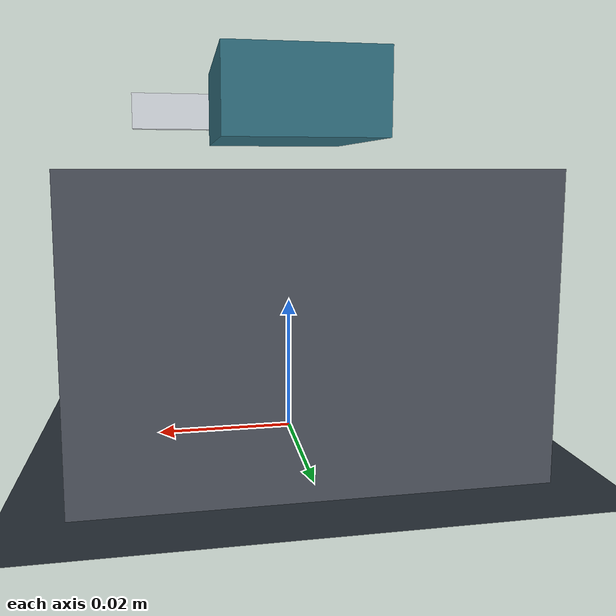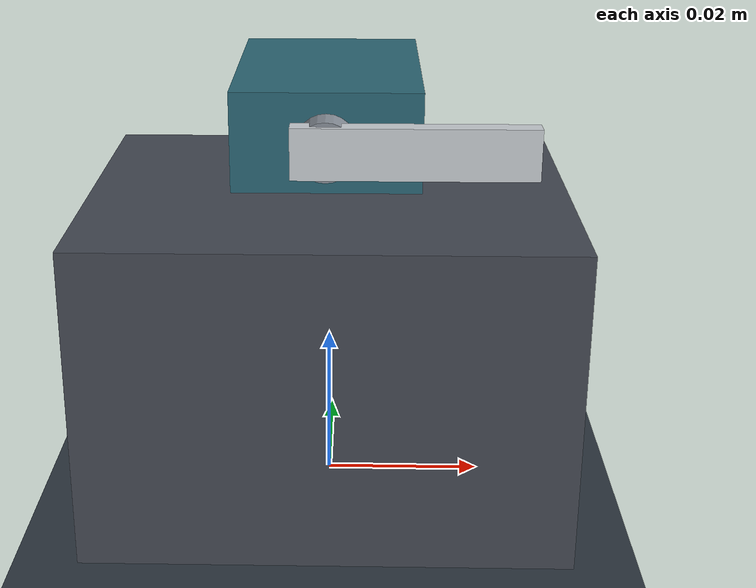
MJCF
<mujoco model="sg90_bench">
  <compiler angle="radian" coordinate="local" autolimits="true"/>
  <option timestep="0.001" gravity="0 0 -9.81" integrator="implicitfast" iterations="50"/>

  <include file="sg90.xml"/>

  <visual>
    <rgba haze="0.12 0.16 0.22 1"/>
    <quality shadowsize="2048"/>
  </visual>

  <asset>
    <texture name="grid" type="2d" builtin="checker" rgb1="0.22 0.26 0.30" rgb2="0.16 0.19 0.22"
             width="512" height="512"/>
    <material name="floor" texture="grid" texrepeat="8 8" reflectance="0.1"/>
    <material name="bench_mount" rgba="0.28 0.30 0.34 1" specular="0.2" shininess="0.25"/>
  </asset>

  <default>
    <geom friction="0.5 0.005 0.0001" condim="3"/>
  </default>

  <worldbody>
    <light name="key" directional="true" diffuse="0.75 0.75 0.7" specular="0.25 0.25 0.2"
           pos="0.4 0.3 0.8" dir="-0.3 -0.25 -1"/>
    <light name="fill" directional="true" diffuse="0.28 0.32 0.36" pos="-0.5 0.2 0.5"
           dir="0.4 -0.15 -1" castshadow="false"/>

    <geom name="floor" type="plane" size="0 0 0.05" material="floor" pos="0 0 0"
          solref="0.02 1" solimp="0.9 0.95 0.001 0.5 2"/>

    <!-- Visual pedestal under the side-mounted SG90 housing. -->
    <geom name="bench_pedestal" type="box" size="0.03 0.025 0.02" pos="0 0 0.02"
          material="bench_mount" contype="0" conaffinity="0"/>
  </worldbody>
</mujoco>

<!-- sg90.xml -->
<mujoco model="sg90">
  <compiler angle="radian" coordinate="local" autolimits="true"/>
  <option timestep="0.001" gravity="0 0 -9.81" integrator="implicitfast" iterations="50"/>

  <default>
    <default class="sg90">
      <!--
        damping: calibrated approx τ_stall/ω_nl = 0.15/10.47 (PARAMS.md)
        armature: assumption — numerical stability only
      -->
      <joint limited="true" damping="0.01432" armature="1e-6" frictionloss="0"/>
      <position kp="3" kv="0.01" forcerange="-0.15 0.15" ctrlrange="-1.5708 1.5708"/>
      <geom friction="0.6 0.01 0.001" condim="3" density="0"/>
    </default>
  </default>

  <asset>
    <material name="sg90_housing" rgba="0.18 0.42 0.48 1" specular="0.25" shininess="0.35"/>
    <material name="sg90_horn" rgba="0.82 0.84 0.86 1" specular="0.4" shininess="0.5"/>
    <material name="sg90_hub" rgba="0.55 0.58 0.62 1" specular="0.35" shininess="0.4"/>
  </asset>

  <worldbody>
    <body name="sg90" childclass="sg90" pos="0 0 0.05" euler="1.5708 0 0">
      <inertial pos="0 0 0" mass="0.009" diaginertia="8.252e-7 1.090e-6 4.741e-7"/>
      <geom name="sg90_housing" type="box" size="0.0111 0.0059 0.0155"
            material="sg90_housing" priority="1"/>

      <!-- Output shaft at top face (+Z local). Travel ±90° per datasheet. -->
      <body name="sg90_rotor" pos="0 0 0.0155">
        <joint name="sg90_joint" type="hinge" axis="0 0 1" range="-1.5708 1.5708"/>
        <!-- Horn mass/inertia: assumption (PARAMS.md) — not datasheet-split. -->
        <inertial pos="0.01 0 0.002" mass="0.0005" diaginertia="2.0e-9 4.5e-8 4.5e-8"/>
        <geom name="sg90_hub" type="cylinder" size="0.0035 0.002" pos="0 0 0.002"
              material="sg90_hub"/>
        <geom name="sg90_horn" type="box" size="0.014 0.003 0.0012" pos="0.01 0 0.0035"
              material="sg90_horn"/>
      </body>
    </body>
  </worldbody>

  <actuator>
    <position name="sg90" joint="sg90_joint" class="sg90"/>
  </actuator>
</mujoco>
